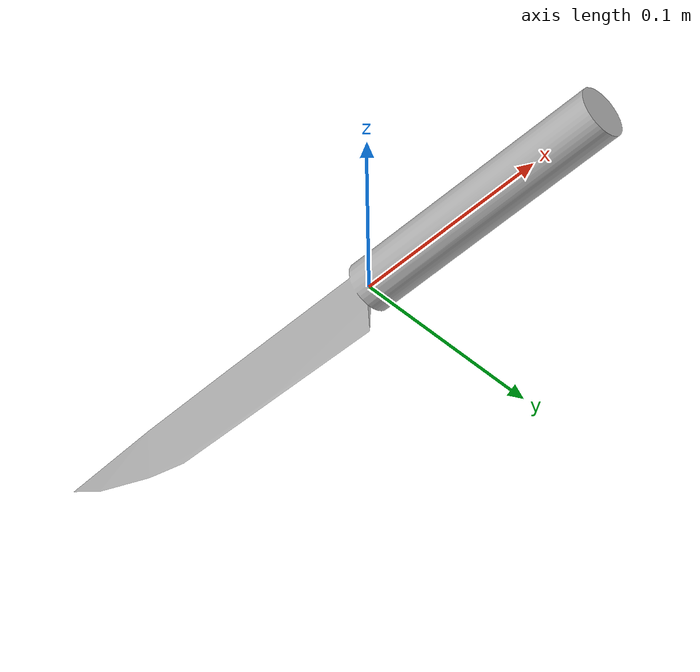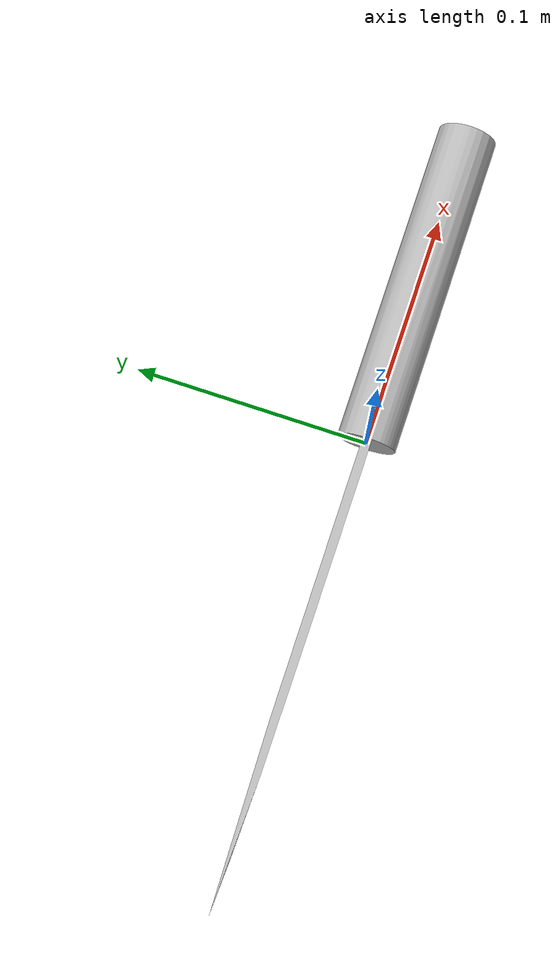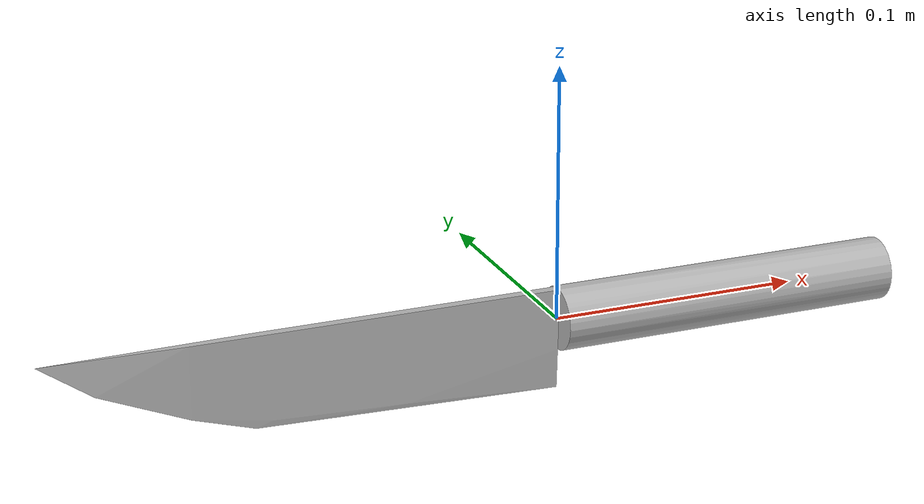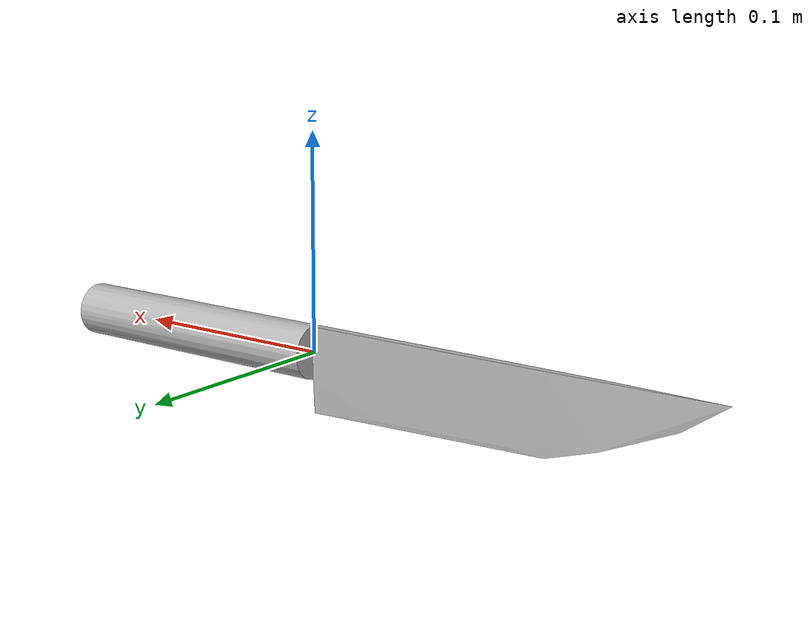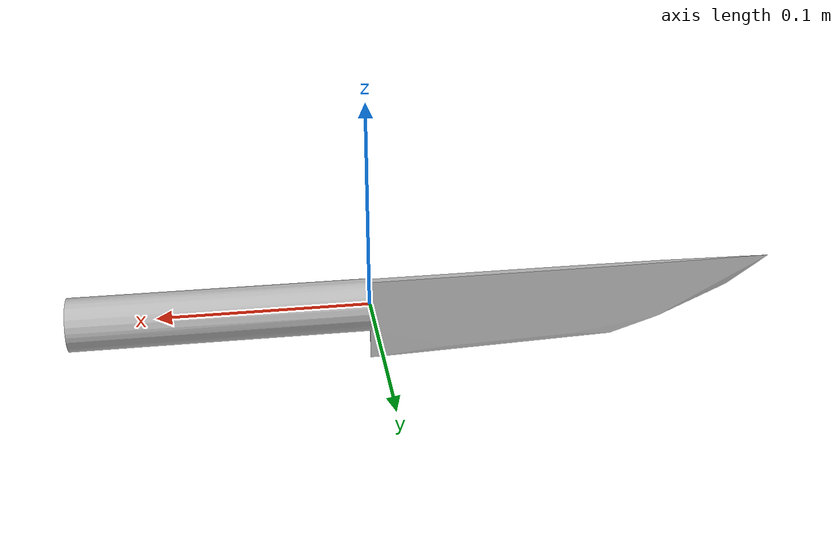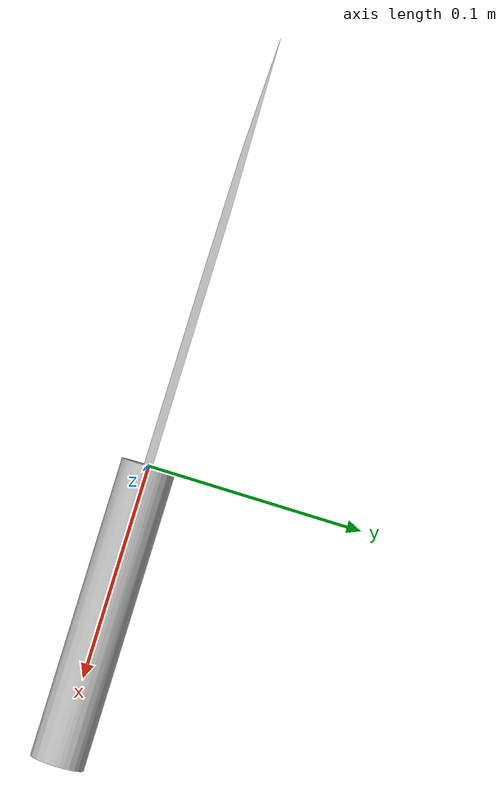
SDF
<?xml version='1.0'?>
<sdf version='1.6'>
    <model name='simple_knife'>
        <pose>0 0 0 0 0 0</pose>
        <link name='link'>
            <pose>0 0 0 0 0 0</pose>

            <inertial>
                <mass>1</mass>
                <pose>0.046265 0.0 -0.000161 0 0 0</pose>
                <inertia>
                    <ixx>0.0000518</ixx>
                    <iyy>0.00305847</iyy>
                    <izz>0.00304899</izz>
                    <ixy>0.0</ixy>
                    <ixz>-0.00000607</ixz>
                    <iyz>0.0</iyz>
                </inertia>
            </inertial>

            <sensor name="tool_contact_sensor" type="contact">
              <always_on>true</always_on>
              <update_rate>30.0</update_rate>
              <contact>
                <collision>collision</collision>
              </contact>
              <plugin name="tool_bumper" filename="libgazebo_ros_bumper.so">
                <bumperTopicName>tool_contact_sensor_state</bumperTopicName>
                <frameName>world</frameName>
              </plugin>
            </sensor>

            <collision name='collision'>
                <geometry>
                    <mesh>
                        <uri>model://simple_knife/mesh.dae</uri>
                    </mesh>
                </geometry>
                <surface>
                    <friction>
                        <ode>
                          <mu>0.4</mu>
                          <mu2>0.4</mu2>
                        </ode>
                        <bullet>
                            <friction>0.4</friction>
                            <friction2>0.4</friction2>
                        </bullet>
                    </friction>
                </surface>
            </collision>
            <visual name='visual'>
                <geometry>
                    <mesh>
                        <uri>model://simple_knife/mesh.dae</uri>
                    </mesh>
                </geometry>
            </visual>
        </link>
    </model>
</sdf>
